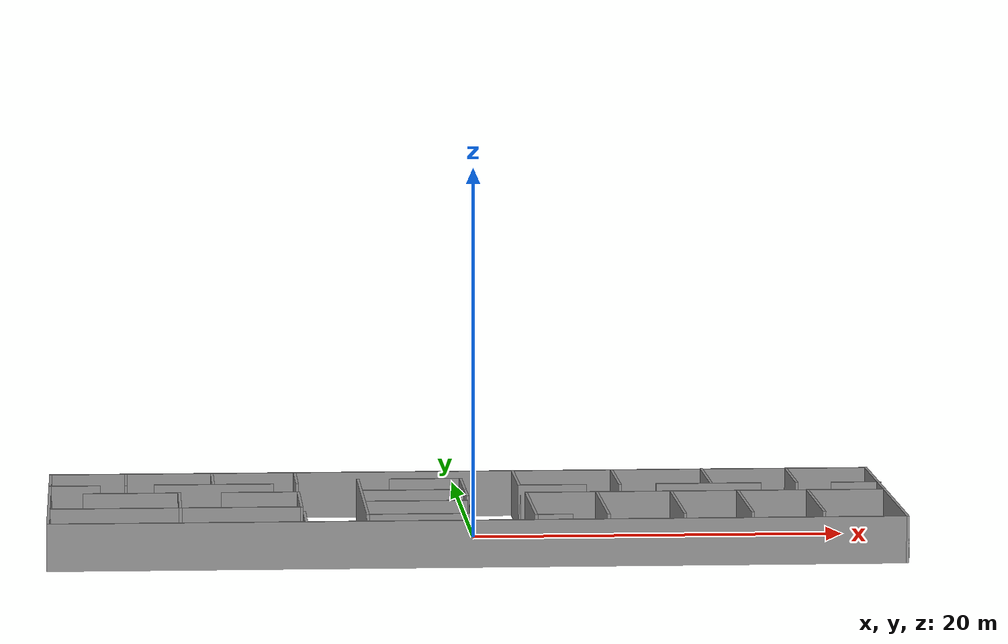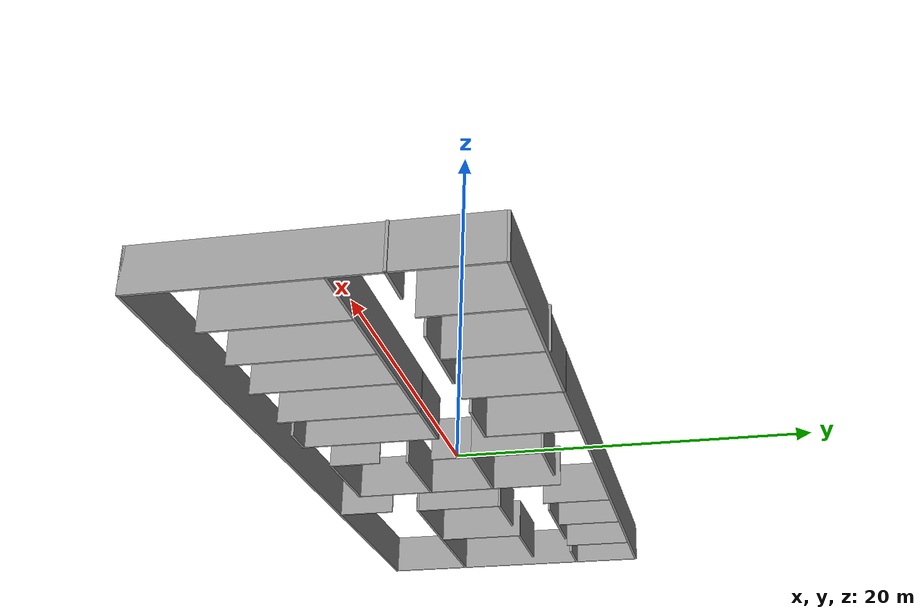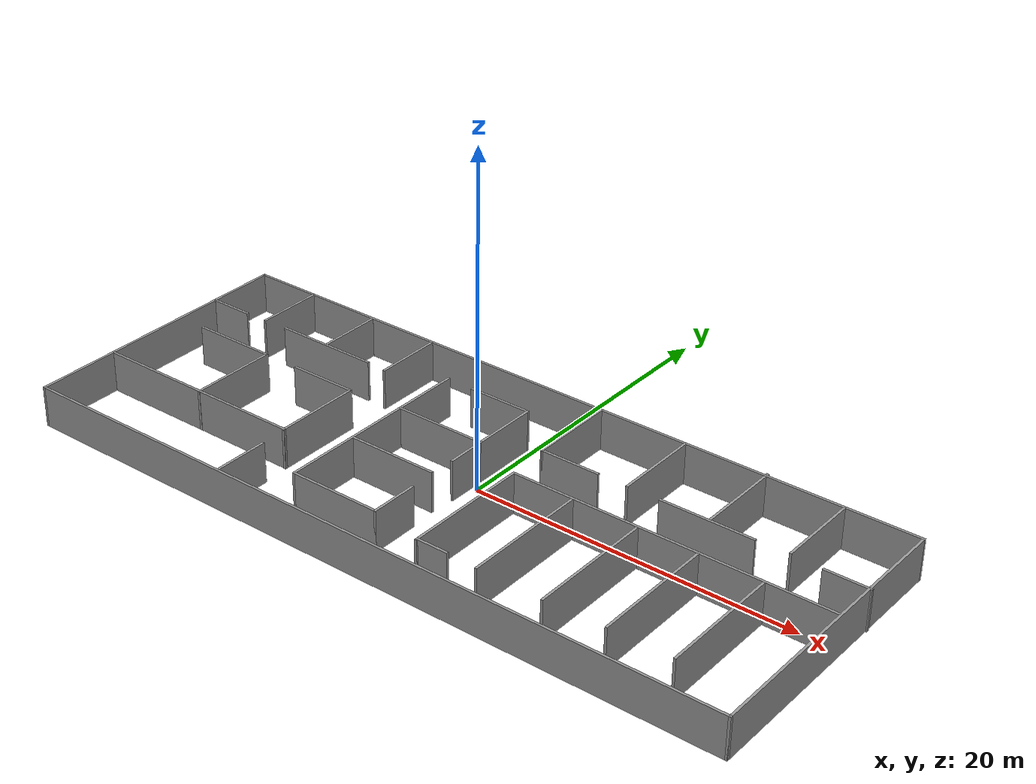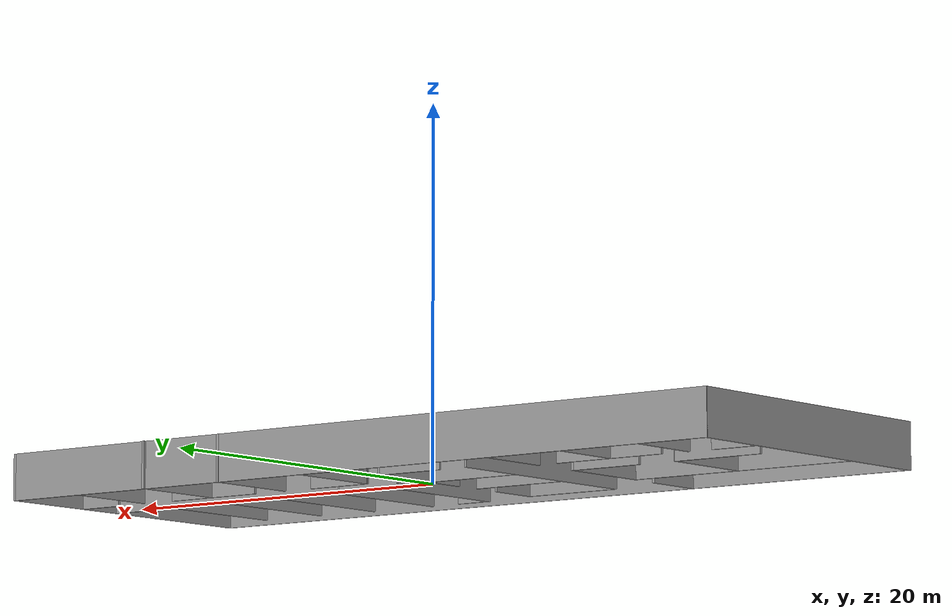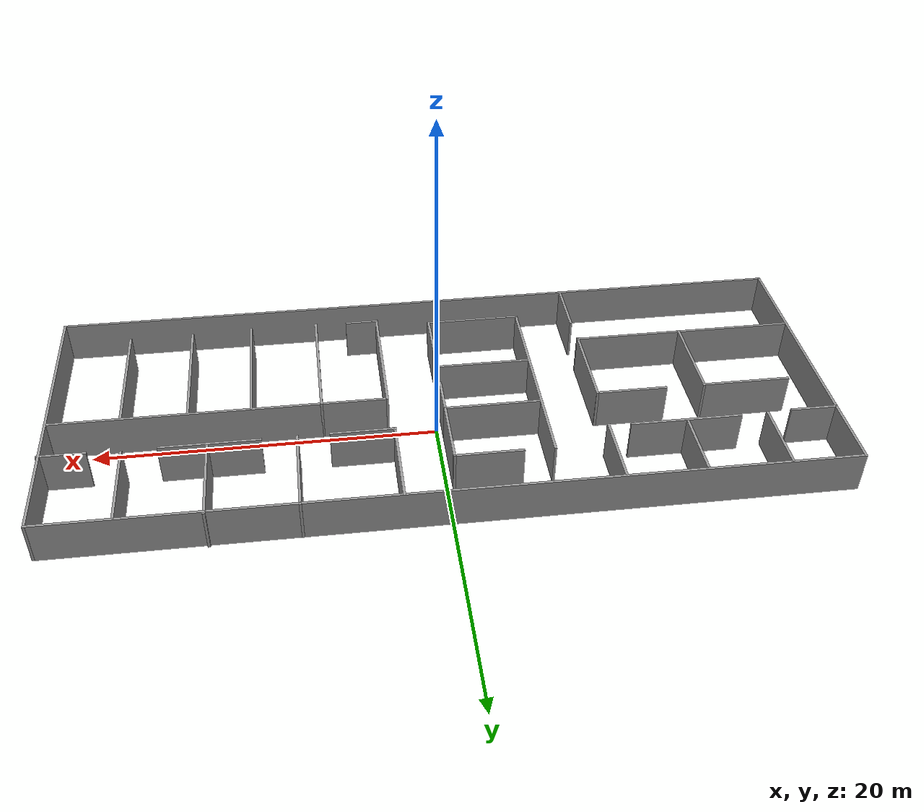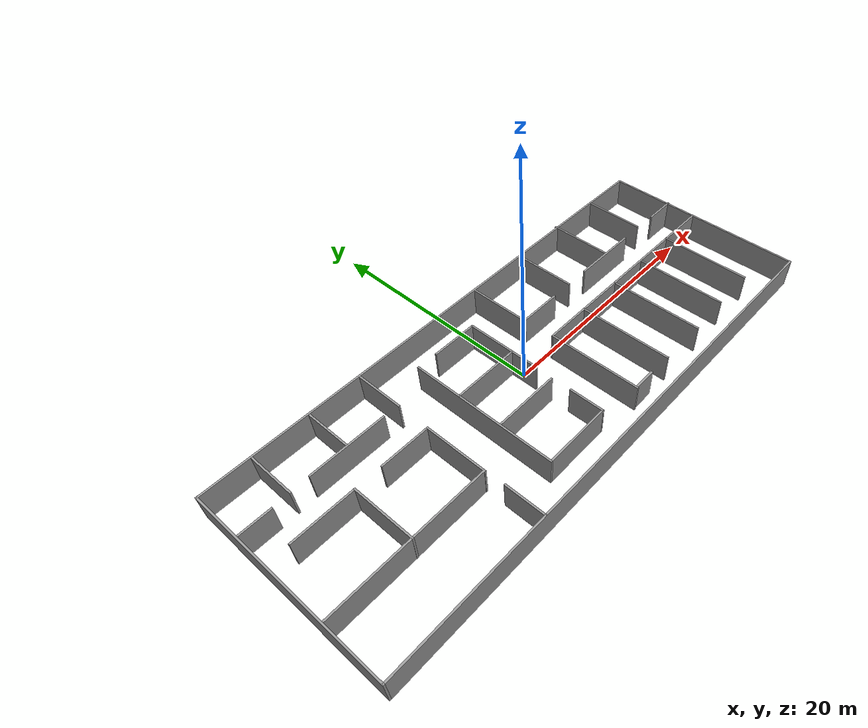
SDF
<?xml version='1.0'?>
<sdf version='1.7'>
  <model name='Lab1'>
    <pose>-0.234127 -1.1399 0 0 -0 0</pose>
    <link name='Wall_1'>
      <collision name='Wall_1_Collision'>
        <geometry>
          <box>
            <size>45.25 0.15 2.5</size>
          </box>
        </geometry>
        <pose>0 0 1.25 0 -0 0</pose>
      </collision>
      <visual name='Wall_1_Visual'>
        <pose>0 0 1.25 0 -0 0</pose>
        <geometry>
          <box>
            <size>45.25 0.15 2.5</size>
          </box>
        </geometry>
        <material>
          <script>
            <uri>file://media/materials/scripts/gazebo.material</uri>
            <name>Gazebo/Grey</name>
          </script>
          <ambient>1 1 1 1</ambient>
        </material>
        <meta>
          <layer>0</layer>
        </meta>
      </visual>
      <pose>-0.042167 -8.8672 0 0 -0 0</pose>
    </link>
    <link name='Wall_10'>
      <collision name='Wall_10_Collision'>
        <geometry>
          <box>
            <size>6.5 0.15 2.5</size>
          </box>
        </geometry>
        <pose>0 0 1.25 0 -0 0</pose>
      </collision>
      <visual name='Wall_10_Visual'>
        <pose>0 0 1.25 0 -0 0</pose>
        <geometry>
          <box>
            <size>6.5 0.15 2.5</size>
          </box>
        </geometry>
        <material>
          <script>
            <uri>file://media/materials/scripts/gazebo.material</uri>
            <name>Gazebo/Grey</name>
          </script>
          <ambient>1 1 1 1</ambient>
        </material>
        <meta>
          <layer>0</layer>
        </meta>
      </visual>
      <pose>-13.6987 4.60775 0 0 -0 0</pose>
    </link>
    <link name='Wall_12'>
      <collision name='Wall_12_Collision'>
        <geometry>
          <box>
            <size>4 0.15 2.5</size>
          </box>
        </geometry>
        <pose>0 0 1.25 0 -0 0</pose>
      </collision>
      <visual name='Wall_12_Visual'>
        <pose>0 0 1.25 0 -0 0</pose>
        <geometry>
          <box>
            <size>4 0.15 2.5</size>
          </box>
        </geometry>
        <material>
          <script>
            <uri>file://media/materials/scripts/gazebo.material</uri>
            <name>Gazebo/Grey</name>
          </script>
          <ambient>1 1 1 1</ambient>
        </material>
        <meta>
          <layer>0</layer>
        </meta>
      </visual>
      <pose>-13.7407 6.65442 0 0 -0 1.5708</pose>
    </link>
    <link name='Wall_14'>
      <collision name='Wall_14_Collision'>
        <geometry>
          <box>
            <size>4.25 0.15 2.5</size>
          </box>
        </geometry>
        <pose>0 0 1.25 0 -0 0</pose>
      </collision>
      <visual name='Wall_14_Visual'>
        <pose>0 0 1.25 0 -0 0</pose>
        <geometry>
          <box>
            <size>4.25 0.15 2.5</size>
          </box>
        </geometry>
        <material>
          <script>
            <uri>file://media/materials/scripts/gazebo.material</uri>
            <name>Gazebo/Grey</name>
          </script>
          <ambient>1 1 1 1</ambient>
        </material>
        <meta>
          <layer>0</layer>
        </meta>
      </visual>
      <pose>-9.17805 6.57286 0 0 -0 -1.5708</pose>
    </link>
    <link name='Wall_16'>
      <collision name='Wall_16_Collision'>
        <geometry>
          <box>
            <size>13.4461 0.15 2.5</size>
          </box>
        </geometry>
        <pose>0 0 1.25 0 -0 0</pose>
      </collision>
      <visual name='Wall_16_Visual'>
        <pose>0 0 1.25 0 -0 0</pose>
        <geometry>
          <box>
            <size>13.4461 0.15 2.5</size>
          </box>
        </geometry>
        <material>
          <script>
            <uri>file://media/materials/scripts/gazebo.material</uri>
            <name>Gazebo/Grey</name>
          </script>
          <ambient>1 1 1 1</ambient>
        </material>
        <meta>
          <layer>0</layer>
        </meta>
      </visual>
      <pose>-15.853 -3.71144 0 0 -0 0.002288</pose>
    </link>
    <link name='Wall_17'>
      <collision name='Wall_17_Collision'>
        <geometry>
          <box>
            <size>5.5 0.15 2.5</size>
          </box>
        </geometry>
        <pose>0 0 1.25 0 -0 0</pose>
      </collision>
      <visual name='Wall_17_Visual'>
        <pose>0 0 1.25 0 -0 0</pose>
        <geometry>
          <box>
            <size>5.5 0.15 2.5</size>
          </box>
        </geometry>
        <material>
          <script>
            <uri>file://media/materials/scripts/gazebo.material</uri>
            <name>Gazebo/Grey</name>
          </script>
          <ambient>1 1 1 1</ambient>
        </material>
        <meta>
          <layer>0</layer>
        </meta>
      </visual>
      <pose>-9.20509 -1.05165 0 0 -0 1.5708</pose>
    </link>
    <link name='Wall_19'>
      <collision name='Wall_19_Collision'>
        <geometry>
          <box>
            <size>4.25 0.15 2.5</size>
          </box>
        </geometry>
        <pose>0 0 1.25 0 -0 0</pose>
      </collision>
      <visual name='Wall_19_Visual'>
        <pose>0 0 1.25 0 -0 0</pose>
        <geometry>
          <box>
            <size>4.25 0.15 2.5</size>
          </box>
        </geometry>
        <material>
          <script>
            <uri>file://media/materials/scripts/gazebo.material</uri>
            <name>Gazebo/Grey</name>
          </script>
          <ambient>1 1 1 1</ambient>
        </material>
        <meta>
          <layer>0</layer>
        </meta>
      </visual>
      <pose>-11.2551 1.62335 0 0 -0 3.14159</pose>
    </link>
    <link name='Wall_2'>
      <collision name='Wall_2_Collision'>
        <geometry>
          <box>
            <size>17.75 0.15 2.5</size>
          </box>
        </geometry>
        <pose>0 0 1.25 0 -0 0</pose>
      </collision>
      <visual name='Wall_2_Visual'>
        <pose>0 0 1.25 0 -0 0</pose>
        <geometry>
          <box>
            <size>17.75 0.15 2.5</size>
          </box>
        </geometry>
        <material>
          <script>
            <uri>file://media/materials/scripts/gazebo.material</uri>
            <name>Gazebo/Grey</name>
          </script>
          <ambient>1 1 1 1</ambient>
        </material>
        <meta>
          <layer>0</layer>
        </meta>
      </visual>
      <pose>22.5078 -0.067203 0 0 -0 1.5708</pose>
    </link>
    <link name='Wall_21'>
      <collision name='Wall_21_Collision'>
        <geometry>
          <box>
            <size>5.5 0.15 2.5</size>
          </box>
        </geometry>
        <pose>0 0 1.25 0 -0 0</pose>
      </collision>
      <visual name='Wall_21_Visual'>
        <pose>0 0 1.25 0 -0 0</pose>
        <geometry>
          <box>
            <size>5.5 0.15 2.5</size>
          </box>
        </geometry>
        <material>
          <script>
            <uri>file://media/materials/scripts/gazebo.material</uri>
            <name>Gazebo/Grey</name>
          </script>
          <ambient>1 1 1 1</ambient>
        </material>
        <meta>
          <layer>0</layer>
        </meta>
      </visual>
      <pose>-15.6266 -1.04817 0 0 -0 -1.5708</pose>
    </link>
    <link name='Wall_23'>
      <collision name='Wall_23_Collision'>
        <geometry>
          <box>
            <size>5.25 0.15 2.5</size>
          </box>
        </geometry>
        <pose>0 0 1.25 0 -0 0</pose>
      </collision>
      <visual name='Wall_23_Visual'>
        <pose>0 0 1.25 0 -0 0</pose>
        <geometry>
          <box>
            <size>5.25 0.15 2.5</size>
          </box>
        </geometry>
        <material>
          <script>
            <uri>file://media/materials/scripts/gazebo.material</uri>
            <name>Gazebo/Grey</name>
          </script>
          <ambient>1 1 1 1</ambient>
        </material>
        <meta>
          <layer>0</layer>
        </meta>
      </visual>
      <pose>-18.1766 1.62683 0 0 -0 3.14159</pose>
    </link>
    <link name='Wall_25'>
      <collision name='Wall_25_Collision'>
        <geometry>
          <box>
            <size>3.5 0.15 2.5</size>
          </box>
        </geometry>
        <pose>0 0 1.25 0 -0 0</pose>
      </collision>
      <visual name='Wall_25_Visual'>
        <pose>0 0 1.25 0 -0 0</pose>
        <geometry>
          <box>
            <size>3.5 0.15 2.5</size>
          </box>
        </geometry>
        <material>
          <script>
            <uri>file://media/materials/scripts/gazebo.material</uri>
            <name>Gazebo/Grey</name>
          </script>
          <ambient>1 1 1 1</ambient>
        </material>
        <meta>
          <layer>0</layer>
        </meta>
      </visual>
      <pose>-9.11721 -7.13544 0 0 -0 -1.5708</pose>
    </link>
    <link name='Wall_27'>
      <collision name='Wall_27_Collision'>
        <geometry>
          <box>
            <size>12.75 0.15 2.5</size>
          </box>
        </geometry>
        <pose>0 0 1.25 0 -0 0</pose>
      </collision>
      <visual name='Wall_27_Visual'>
        <pose>0 0 1.25 0 -0 0</pose>
        <geometry>
          <box>
            <size>12.75 0.15 2.5</size>
          </box>
        </geometry>
        <material>
          <script>
            <uri>file://media/materials/scripts/gazebo.material</uri>
            <name>Gazebo/Grey</name>
          </script>
          <ambient>1 1 1 1</ambient>
        </material>
        <meta>
          <layer>0</layer>
        </meta>
      </visual>
      <pose>-5.80171 -0.232211 0 0 -0 -1.5708</pose>
    </link>
    <link name='Wall_28'>
      <collision name='Wall_28_Collision'>
        <geometry>
          <box>
            <size>5.75 0.15 2.5</size>
          </box>
        </geometry>
        <pose>0 0 1.25 0 -0 0</pose>
      </collision>
      <visual name='Wall_28_Visual'>
        <pose>0 0 1.25 0 -0 0</pose>
        <geometry>
          <box>
            <size>5.75 0.15 2.5</size>
          </box>
        </geometry>
        <material>
          <script>
            <uri>file://media/materials/scripts/gazebo.material</uri>
            <name>Gazebo/Grey</name>
          </script>
          <ambient>1 1 1 1</ambient>
        </material>
        <meta>
          <layer>0</layer>
        </meta>
      </visual>
      <pose>-3.00171 -6.53221 0 0 -0 0</pose>
    </link>
    <link name='Wall_29'>
      <collision name='Wall_29_Collision'>
        <geometry>
          <box>
            <size>3 0.15 2.5</size>
          </box>
        </geometry>
        <pose>0 0 1.25 0 -0 0</pose>
      </collision>
      <visual name='Wall_29_Visual'>
        <pose>0 0 1.25 0 -0 0</pose>
        <geometry>
          <box>
            <size>3 0.15 2.5</size>
          </box>
        </geometry>
        <material>
          <script>
            <uri>file://media/materials/scripts/gazebo.material</uri>
            <name>Gazebo/Grey</name>
          </script>
          <ambient>1 1 1 1</ambient>
        </material>
        <meta>
          <layer>0</layer>
        </meta>
      </visual>
      <pose>-0.201707 -5.10721 0 0 -0 1.5708</pose>
    </link>
    <link name='Wall_3'>
      <collision name='Wall_3_Collision'>
        <geometry>
          <box>
            <size>45.25 0.15 2.5</size>
          </box>
        </geometry>
        <pose>0 0 1.25 0 -0 0</pose>
      </collision>
      <visual name='Wall_3_Visual'>
        <pose>0 0 1.25 0 -0 0</pose>
        <geometry>
          <box>
            <size>45.25 0.15 2.5</size>
          </box>
        </geometry>
        <material>
          <script>
            <uri>file://media/materials/scripts/gazebo.material</uri>
            <name>Gazebo/Grey</name>
          </script>
          <ambient>1 1 1 1</ambient>
        </material>
        <meta>
          <layer>0</layer>
        </meta>
      </visual>
      <pose>-0.042167 8.7328 0 0 -0 3.14159</pose>
    </link>
    <link name='Wall_31'>
      <collision name='Wall_31_Collision'>
        <geometry>
          <box>
            <size>5.5 0.15 2.5</size>
          </box>
        </geometry>
        <pose>0 0 1.25 0 -0 0</pose>
      </collision>
      <visual name='Wall_31_Visual'>
        <pose>0 0 1.25 0 -0 0</pose>
        <geometry>
          <box>
            <size>5.5 0.15 2.5</size>
          </box>
        </geometry>
        <material>
          <script>
            <uri>file://media/materials/scripts/gazebo.material</uri>
            <name>Gazebo/Grey</name>
          </script>
          <ambient>1 1 1 1</ambient>
        </material>
        <meta>
          <layer>0</layer>
        </meta>
      </visual>
      <pose>-3.00504 -1.96243 0 0 -0 0</pose>
    </link>
    <link name='Wall_33'>
      <collision name='Wall_33_Collision'>
        <geometry>
          <box>
            <size>2.5 0.15 2.5</size>
          </box>
        </geometry>
        <pose>0 0 1.25 0 -0 0</pose>
      </collision>
      <visual name='Wall_33_Visual'>
        <pose>0 0 1.25 0 -0 0</pose>
        <geometry>
          <box>
            <size>2.5 0.15 2.5</size>
          </box>
        </geometry>
        <material>
          <script>
            <uri>file://media/materials/scripts/gazebo.material</uri>
            <name>Gazebo/Grey</name>
          </script>
          <ambient>1 1 1 1</ambient>
        </material>
        <meta>
          <layer>0</layer>
        </meta>
      </visual>
      <pose>-0.17447 0.763862 0 0 -0 1.5708</pose>
    </link>
    <link name='Wall_34'>
      <collision name='Wall_34_Collision'>
        <geometry>
          <box>
            <size>5.75 0.15 2.5</size>
          </box>
        </geometry>
        <pose>0 0 1.25 0 -0 0</pose>
      </collision>
      <visual name='Wall_34_Visual'>
        <pose>0 0 1.25 0 -0 0</pose>
        <geometry>
          <box>
            <size>5.75 0.15 2.5</size>
          </box>
        </geometry>
        <material>
          <script>
            <uri>file://media/materials/scripts/gazebo.material</uri>
            <name>Gazebo/Grey</name>
          </script>
          <ambient>1 1 1 1</ambient>
        </material>
        <meta>
          <layer>0</layer>
        </meta>
      </visual>
      <pose>-2.97447 1.93886 0 0 -0 3.14159</pose>
    </link>
    <link name='Wall_36'>
      <collision name='Wall_36_Collision'>
        <geometry>
          <box>
            <size>4.25 0.15 2.5</size>
          </box>
        </geometry>
        <pose>0 0 1.25 0 -0 0</pose>
      </collision>
      <visual name='Wall_36_Visual'>
        <pose>0 0 1.25 0 -0 0</pose>
        <geometry>
          <box>
            <size>4.25 0.15 2.5</size>
          </box>
        </geometry>
        <material>
          <script>
            <uri>file://media/materials/scripts/gazebo.material</uri>
            <name>Gazebo/Grey</name>
          </script>
          <ambient>1 1 1 1</ambient>
        </material>
        <meta>
          <layer>0</layer>
        </meta>
      </visual>
      <pose>-0.17447 3.98886 0 0 -0 1.5708</pose>
    </link>
    <link name='Wall_37'>
      <collision name='Wall_37_Collision'>
        <geometry>
          <box>
            <size>4 0.15 2.5</size>
          </box>
        </geometry>
        <pose>0 0 1.25 0 -0 0</pose>
      </collision>
      <visual name='Wall_37_Visual'>
        <pose>0 0 1.25 0 -0 0</pose>
        <geometry>
          <box>
            <size>4 0.15 2.5</size>
          </box>
        </geometry>
        <material>
          <script>
            <uri>file://media/materials/scripts/gazebo.material</uri>
            <name>Gazebo/Grey</name>
          </script>
          <ambient>1 1 1 1</ambient>
        </material>
        <meta>
          <layer>0</layer>
        </meta>
      </visual>
      <pose>-2.09947 6.03886 0 0 -0 3.14159</pose>
    </link>
    <link name='Wall_39'>
      <collision name='Wall_39_Collision'>
        <geometry>
          <box>
            <size>5.5 0.15 2.5</size>
          </box>
        </geometry>
        <pose>0 0 1.25 0 -0 0</pose>
      </collision>
      <visual name='Wall_39_Visual'>
        <pose>0 0 1.25 0 -0 0</pose>
        <geometry>
          <box>
            <size>5.5 0.15 2.5</size>
          </box>
        </geometry>
        <material>
          <script>
            <uri>file://media/materials/scripts/gazebo.material</uri>
            <name>Gazebo/Grey</name>
          </script>
          <ambient>1 1 1 1</ambient>
        </material>
        <meta>
          <layer>0</layer>
        </meta>
      </visual>
      <pose>2.86164 6.04835 0 0 -0 -1.5708</pose>
    </link>
    <link name='Wall_4'>
      <collision name='Wall_4_Collision'>
        <geometry>
          <box>
            <size>17.75 0.15 2.5</size>
          </box>
        </geometry>
        <pose>0 0 1.25 0 -0 0</pose>
      </collision>
      <visual name='Wall_4_Visual'>
        <pose>0 0 1.25 0 -0 0</pose>
        <geometry>
          <box>
            <size>17.75 0.15 2.5</size>
          </box>
        </geometry>
        <material>
          <script>
            <uri>file://media/materials/scripts/gazebo.material</uri>
            <name>Gazebo/Grey</name>
          </script>
          <ambient>1 1 1 1</ambient>
        </material>
        <meta>
          <layer>0</layer>
        </meta>
      </visual>
      <pose>-22.5922 -0.067203 0 0 -0 -1.5708</pose>
    </link>
    <link name='Wall_40'>
      <collision name='Wall_40_Collision'>
        <geometry>
          <box>
            <size>3.75 0.15 2.5</size>
          </box>
        </geometry>
        <pose>0 0 1.25 0 -0 0</pose>
      </collision>
      <visual name='Wall_40_Visual'>
        <pose>0 0 1.25 0 -0 0</pose>
        <geometry>
          <box>
            <size>3.75 0.15 2.5</size>
          </box>
        </geometry>
        <material>
          <script>
            <uri>file://media/materials/scripts/gazebo.material</uri>
            <name>Gazebo/Grey</name>
          </script>
          <ambient>1 1 1 1</ambient>
        </material>
        <meta>
          <layer>0</layer>
        </meta>
      </visual>
      <pose>4.66164 3.37335 0 0 -0 0</pose>
    </link>
    <link name='Wall_42'>
      <collision name='Wall_42_Collision'>
        <geometry>
          <box>
            <size>5.5 0.15 2.5</size>
          </box>
        </geometry>
        <pose>0 0 1.25 0 -0 0</pose>
      </collision>
      <visual name='Wall_42_Visual'>
        <pose>0 0 1.25 0 -0 0</pose>
        <geometry>
          <box>
            <size>5.5 0.15 2.5</size>
          </box>
        </geometry>
        <material>
          <script>
            <uri>file://media/materials/scripts/gazebo.material</uri>
            <name>Gazebo/Grey</name>
          </script>
          <ambient>1 1 1 1</ambient>
        </material>
        <meta>
          <layer>0</layer>
        </meta>
      </visual>
      <pose>8.35901 6.07831 0 0 -0 1.5708</pose>
    </link>
    <link name='Wall_44'>
      <collision name='Wall_44_Collision'>
        <geometry>
          <box>
            <size>5.75 0.15 2.5</size>
          </box>
        </geometry>
        <pose>0 0 1.25 0 -0 0</pose>
      </collision>
      <visual name='Wall_44_Visual'>
        <pose>0 0 1.25 0 -0 0</pose>
        <geometry>
          <box>
            <size>5.75 0.15 2.5</size>
          </box>
        </geometry>
        <material>
          <script>
            <uri>file://media/materials/scripts/gazebo.material</uri>
            <name>Gazebo/Grey</name>
          </script>
          <ambient>1 1 1 1</ambient>
        </material>
        <meta>
          <layer>0</layer>
        </meta>
      </visual>
      <pose>13.2161 3.40331 0 0 -0 0</pose>
    </link>
    <link name='Wall_46'>
      <collision name='Wall_46_Collision'>
        <geometry>
          <box>
            <size>5.25 0.15 2.5</size>
          </box>
        </geometry>
        <pose>0 0 1.25 0 -0 0</pose>
      </collision>
      <visual name='Wall_46_Visual'>
        <pose>0 0 1.25 0 -0 0</pose>
        <geometry>
          <box>
            <size>5.25 0.15 2.5</size>
          </box>
        </geometry>
        <material>
          <script>
            <uri>file://media/materials/scripts/gazebo.material</uri>
            <name>Gazebo/Grey</name>
          </script>
          <ambient>1 1 1 1</ambient>
        </material>
        <meta>
          <layer>0</layer>
        </meta>
      </visual>
      <pose>18.0415 6.09518 0 0 -0 1.5708</pose>
    </link>
    <link name='Wall_48'>
      <collision name='Wall_48_Collision'>
        <geometry>
          <box>
            <size>2.75 0.15 2.5</size>
          </box>
        </geometry>
        <pose>0 0 1.25 0 -0 0</pose>
      </collision>
      <visual name='Wall_48_Visual'>
        <pose>0 0 1.25 0 -0 0</pose>
        <geometry>
          <box>
            <size>2.75 0.15 2.5</size>
          </box>
        </geometry>
        <material>
          <script>
            <uri>file://media/materials/scripts/gazebo.material</uri>
            <name>Gazebo/Grey</name>
          </script>
          <ambient>1 1 1 1</ambient>
        </material>
        <meta>
          <layer>0</layer>
        </meta>
      </visual>
      <pose>21.2922 3.36784 0 0 -0 0</pose>
    </link>
    <link name='Wall_50'>
      <collision name='Wall_50_Collision'>
        <geometry>
          <box>
            <size>5.5 0.15 2.5</size>
          </box>
        </geometry>
        <pose>0 0 1.25 0 -0 0</pose>
      </collision>
      <visual name='Wall_50_Visual'>
        <pose>0 0 1.25 0 -0 0</pose>
        <geometry>
          <box>
            <size>5.5 0.15 2.5</size>
          </box>
        </geometry>
        <material>
          <script>
            <uri>file://media/materials/scripts/gazebo.material</uri>
            <name>Gazebo/Grey</name>
          </script>
          <ambient>1 1 1 1</ambient>
        </material>
        <meta>
          <layer>0</layer>
        </meta>
      </visual>
      <pose>13.3599 6.1922 0 0 -0 1.5708</pose>
    </link>
    <link name='Wall_52'>
      <collision name='Wall_52_Collision'>
        <geometry>
          <box>
            <size>19.5 0.15 2.5</size>
          </box>
        </geometry>
        <pose>0 0 1.25 0 -0 0</pose>
      </collision>
      <visual name='Wall_52_Visual'>
        <pose>0 0 1.25 0 -0 0</pose>
        <geometry>
          <box>
            <size>19.5 0.15 2.5</size>
          </box>
        </geometry>
        <material>
          <script>
            <uri>file://media/materials/scripts/gazebo.material</uri>
            <name>Gazebo/Grey</name>
          </script>
          <ambient>1 1 1 1</ambient>
        </material>
        <meta>
          <layer>0</layer>
        </meta>
      </visual>
      <pose>12.7236 0.684137 0 0 -0 0</pose>
    </link>
    <link name='Wall_54'>
      <collision name='Wall_54_Collision'>
        <geometry>
          <box>
            <size>7.75 0.15 2.5</size>
          </box>
        </geometry>
        <pose>0 0 1.25 0 -0 0</pose>
      </collision>
      <visual name='Wall_54_Visual'>
        <pose>0 0 1.25 0 -0 0</pose>
        <geometry>
          <box>
            <size>7.75 0.15 2.5</size>
          </box>
        </geometry>
        <material>
          <script>
            <uri>file://media/materials/scripts/gazebo.material</uri>
            <name>Gazebo/Grey</name>
          </script>
          <ambient>1 1 1 1</ambient>
        </material>
        <meta>
          <layer>0</layer>
        </meta>
      </visual>
      <pose>18.3182 -3.15064 0 0 -0 -1.5708</pose>
    </link>
    <link name='Wall_56'>
      <collision name='Wall_56_Collision'>
        <geometry>
          <box>
            <size>7.75 0.15 2.5</size>
          </box>
        </geometry>
        <pose>0 0 1.25 0 -0 0</pose>
      </collision>
      <visual name='Wall_56_Visual'>
        <pose>0 0 1.25 0 -0 0</pose>
        <geometry>
          <box>
            <size>7.75 0.15 2.5</size>
          </box>
        </geometry>
        <material>
          <script>
            <uri>file://media/materials/scripts/gazebo.material</uri>
            <name>Gazebo/Grey</name>
          </script>
          <ambient>1 1 1 1</ambient>
        </material>
        <meta>
          <layer>0</layer>
        </meta>
      </visual>
      <pose>14.5269 -3.22021 0 0 -0 -1.5708</pose>
    </link>
    <link name='Wall_58'>
      <collision name='Wall_58_Collision'>
        <geometry>
          <box>
            <size>8 0.15 2.5</size>
          </box>
        </geometry>
        <pose>0 0 1.25 0 -0 0</pose>
      </collision>
      <visual name='Wall_58_Visual'>
        <pose>0 0 1.25 0 -0 0</pose>
        <geometry>
          <box>
            <size>8 0.15 2.5</size>
          </box>
        </geometry>
        <material>
          <script>
            <uri>file://media/materials/scripts/gazebo.material</uri>
            <name>Gazebo/Grey</name>
          </script>
          <ambient>1 1 1 1</ambient>
        </material>
        <meta>
          <layer>0</layer>
        </meta>
      </visual>
      <pose>10.9095 -3.27564 0 0 -0 -1.5708</pose>
    </link>
    <link name='Wall_6'>
      <collision name='Wall_6_Collision'>
        <geometry>
          <box>
            <size>2.75 0.15 2.5</size>
          </box>
        </geometry>
        <pose>0 0 1.25 0 -0 0</pose>
      </collision>
      <visual name='Wall_6_Visual'>
        <pose>0 0 1.25 0 -0 0</pose>
        <geometry>
          <box>
            <size>2.75 0.15 2.5</size>
          </box>
        </geometry>
        <material>
          <script>
            <uri>file://media/materials/scripts/gazebo.material</uri>
            <name>Gazebo/Grey</name>
          </script>
          <ambient>1 1 1 1</ambient>
        </material>
        <meta>
          <layer>0</layer>
        </meta>
      </visual>
      <pose>-21.2617 4.48608 0 0 -0 0</pose>
    </link>
    <link name='Wall_60'>
      <collision name='Wall_60_Collision'>
        <geometry>
          <box>
            <size>8 0.15 2.5</size>
          </box>
        </geometry>
        <pose>0 0 1.25 0 -0 0</pose>
      </collision>
      <visual name='Wall_60_Visual'>
        <pose>0 0 1.25 0 -0 0</pose>
        <geometry>
          <box>
            <size>8 0.15 2.5</size>
          </box>
        </geometry>
        <material>
          <script>
            <uri>file://media/materials/scripts/gazebo.material</uri>
            <name>Gazebo/Grey</name>
          </script>
          <ambient>1 1 1 1</ambient>
        </material>
        <meta>
          <layer>0</layer>
        </meta>
      </visual>
      <pose>6.87471 -3.24086 0 0 -0 -1.5708</pose>
    </link>
    <link name='Wall_62'>
      <collision name='Wall_62_Collision'>
        <geometry>
          <box>
            <size>8 0.15 2.5</size>
          </box>
        </geometry>
        <pose>0 0 1.25 0 -0 0</pose>
      </collision>
      <visual name='Wall_62_Visual'>
        <pose>0 0 1.25 0 -0 0</pose>
        <geometry>
          <box>
            <size>8 0.15 2.5</size>
          </box>
        </geometry>
        <material>
          <script>
            <uri>file://media/materials/scripts/gazebo.material</uri>
            <name>Gazebo/Grey</name>
          </script>
          <ambient>1 1 1 1</ambient>
        </material>
        <meta>
          <layer>0</layer>
        </meta>
      </visual>
      <pose>3.04863 -3.24086 0 0 -0 -1.5708</pose>
    </link>
    <link name='Wall_64'>
      <collision name='Wall_64_Collision'>
        <geometry>
          <box>
            <size>2 0.15 2.5</size>
          </box>
        </geometry>
        <pose>0 0 1.25 0 -0 0</pose>
      </collision>
      <visual name='Wall_64_Visual'>
        <pose>0 0 1.25 0 -0 0</pose>
        <geometry>
          <box>
            <size>2 0.15 2.5</size>
          </box>
        </geometry>
        <material>
          <script>
            <uri>file://media/materials/scripts/gazebo.material</uri>
            <name>Gazebo/Grey</name>
          </script>
          <ambient>1 1 1 1</ambient>
        </material>
        <meta>
          <layer>0</layer>
        </meta>
      </visual>
      <pose>3.98819 -7.09369 0 0 -0 3.14159</pose>
    </link>
    <link name='Wall_8'>
      <collision name='Wall_8_Collision'>
        <geometry>
          <box>
            <size>4.25 0.15 2.5</size>
          </box>
        </geometry>
        <pose>0 0 1.25 0 -0 0</pose>
      </collision>
      <visual name='Wall_8_Visual'>
        <pose>0 0 1.25 0 -0 0</pose>
        <geometry>
          <box>
            <size>4.25 0.15 2.5</size>
          </box>
        </geometry>
        <material>
          <script>
            <uri>file://media/materials/scripts/gazebo.material</uri>
            <name>Gazebo/Grey</name>
          </script>
          <ambient>1 1 1 1</ambient>
        </material>
        <meta>
          <layer>0</layer>
        </meta>
      </visual>
      <pose>-18.4858 6.59691 0 0 -0 1.5708</pose>
    </link>
    <static>1</static>
  </model>
</sdf>
